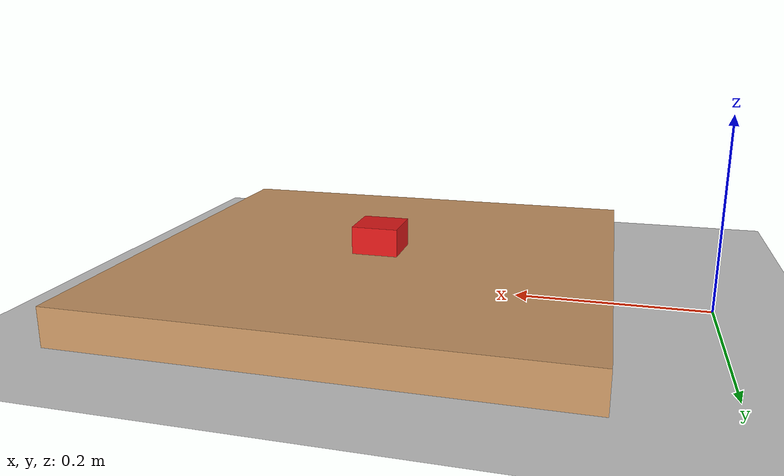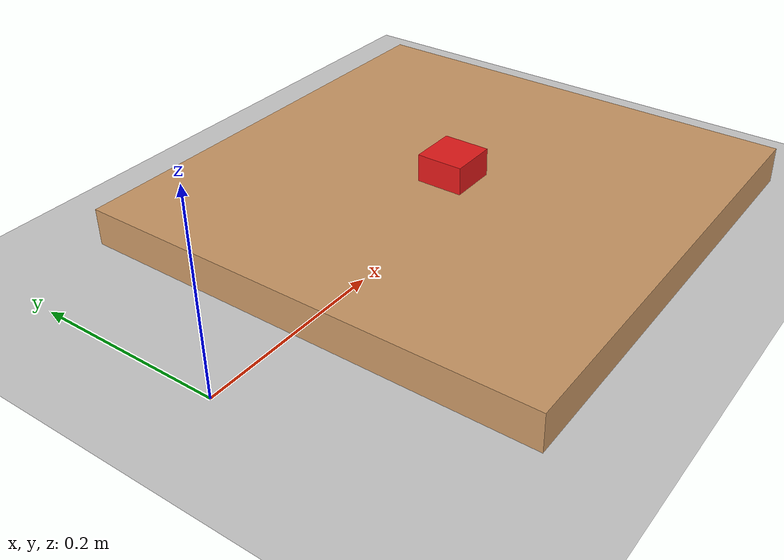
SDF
<?xml version="1.0" ?>
<sdf version="1.7">
  <world name="default">

    <gui fullscreen="0">
      <!-- Camera framed on this scene's workspace -->
      <plugin filename="MinimalScene" name="3D View">
        <gz-gui>
          <title>3D View</title>
          <property type="bool" key="showTitleBar">false</property>
          <property type="string" key="state">docked</property>
        </gz-gui>
        <engine>ogre2</engine>
        <scene>scene</scene>
        <ambient_light>0.4 0.4 0.4</ambient_light>
        <background_color>0.8 0.8 0.8</background_color>
        <camera_pose>-0.9 -0.9 0.9 0 0.49 0.67</camera_pose>
      </plugin>
      <plugin filename="EntityContextMenuPlugin" name="Entity context menu">
        <gz-gui>
          <property key="state" type="string">floating</property>
          <property key="width" type="double">5</property>
          <property key="height" type="double">5</property>
          <property key="showTitleBar" type="bool">false</property>
        </gz-gui>
      </plugin>
      <plugin filename="GzSceneManager" name="Scene Manager">
        <gz-gui>
          <property key="resizable" type="bool">false</property>
          <property key="width" type="double">5</property>
          <property key="height" type="double">5</property>
          <property key="state" type="string">floating</property>
          <property key="showTitleBar" type="bool">false</property>
        </gz-gui>
      </plugin>
      <plugin filename="InteractiveViewControl" name="Interactive view control">
        <gz-gui>
          <property key="resizable" type="bool">false</property>
          <property key="width" type="double">5</property>
          <property key="height" type="double">5</property>
          <property key="state" type="string">floating</property>
          <property key="showTitleBar" type="bool">false</property>
        </gz-gui>
      </plugin>
      <plugin filename="CameraTracking" name="Camera Tracking">
        <gz-gui>
          <property key="resizable" type="bool">false</property>
          <property key="width" type="double">5</property>
          <property key="height" type="double">5</property>
          <property key="state" type="string">floating</property>
          <property key="showTitleBar" type="bool">false</property>
        </gz-gui>
      </plugin>
      <plugin filename="MarkerManager" name="Marker manager">
        <gz-gui>
          <property key="resizable" type="bool">false</property>
          <property key="width" type="double">5</property>
          <property key="height" type="double">5</property>
          <property key="state" type="string">floating</property>
          <property key="showTitleBar" type="bool">false</property>
        </gz-gui>
      </plugin>
      <plugin filename="SelectEntities" name="Select Entities">
        <gz-gui>
          <property key="resizable" type="bool">false</property>
          <property key="width" type="double">5</property>
          <property key="height" type="double">5</property>
          <property key="state" type="string">floating</property>
          <property key="showTitleBar" type="bool">false</property>
        </gz-gui>
      </plugin>
      <plugin filename="Spawn" name="Spawn Entities">
        <gz-gui>
          <property key="resizable" type="bool">false</property>
          <property key="width" type="double">5</property>
          <property key="height" type="double">5</property>
          <property key="state" type="string">floating</property>
          <property key="showTitleBar" type="bool">false</property>
        </gz-gui>
      </plugin>
      <plugin filename="VisualizationCapabilities" name="Visualization Capabilities">
        <gz-gui>
          <property key="resizable" type="bool">false</property>
          <property key="width" type="double">5</property>
          <property key="height" type="double">5</property>
          <property key="state" type="string">floating</property>
          <property key="showTitleBar" type="bool">false</property>
        </gz-gui>
      </plugin>
      <plugin filename="WorldControl" name="World control">
        <gz-gui>
          <title>World control</title>
          <property type="bool" key="showTitleBar">false</property>
          <property type="bool" key="resizable">false</property>
          <property type="double" key="height">72</property>
          <property type="double" key="z">1</property>
          <property type="string" key="state">floating</property>
          <anchors target="3D View">
            <line own="left" target="left"/>
            <line own="bottom" target="bottom"/>
          </anchors>
        </gz-gui>
        <play_pause>true</play_pause>
        <step>true</step>
        <start_paused>true</start_paused>
        <use_event>true</use_event>
      </plugin>
      <plugin filename="WorldStats" name="World stats">
        <gz-gui>
          <title>World stats</title>
          <property type="bool" key="showTitleBar">false</property>
          <property type="bool" key="resizable">false</property>
          <property type="double" key="height">110</property>
          <property type="double" key="width">290</property>
          <property type="double" key="z">1</property>
          <property type="string" key="state">floating</property>
          <anchors target="3D View">
            <line own="right" target="right"/>
            <line own="bottom" target="bottom"/>
          </anchors>
        </gz-gui>
        <sim_time>true</sim_time>
        <real_time>true</real_time>
        <real_time_factor>true</real_time_factor>
        <iterations>true</iterations>
      </plugin>
      <plugin filename="EntityTree" name="Entity tree">
        <gz-gui>
          <property type="bool" key="showTitleBar">false</property>
          <property type="string" key="state">docked</property>
        </gz-gui>
      </plugin>
    </gui>

    <physics name="dart_physics" type="dart">
      <max_step_size>0.001</max_step_size>
      <real_time_factor>1</real_time_factor>
      <gravity>0.0 0.0 -9.8</gravity>
    </physics>

    <plugin filename="gz-sim-physics-system" name="gz::sim::systems::Physics"/>
    <plugin filename="gz-sim-user-commands-system" name="gz::sim::systems::UserCommands"/>
    <plugin filename="gz-sim-scene-broadcaster-system" name="gz::sim::systems::SceneBroadcaster"/>
    <plugin filename="gz-sim-sensors-system" name="gz::sim::systems::Sensors">
      <render_engine>ogre2</render_engine>
    </plugin>

    <light name="sun" type="directional">
      <cast_shadows>false</cast_shadows>
      <pose>0 0 10 0 0 0</pose>
      <diffuse>0.8 0.8 0.8 1</diffuse>
      <specular>0.2 0.2 0.2 1</specular>
      <attenuation>
        <range>1000</range>
        <constant>0.9</constant>
        <linear>0.01</linear>
        <quadratic>0.001</quadratic>
      </attenuation>
      <direction>-0.5 0.1 -0.9</direction>
    </light>

    <model name="ground_plane">
      <static>true</static>
      <link name="link">
        <collision name="collision">
          <geometry>
            <plane>
              <normal>0 0 1</normal>
            </plane>
          </geometry>
        </collision>
        <visual name="visual">
          <geometry>
            <plane>
              <normal>0 0 1</normal>
              <size>100 100</size>
            </plane>
          </geometry>
          <material>
            <ambient>0.8 0.8 0.8 1</ambient>
            <diffuse>0.8 0.8 0.8 1</diffuse>
            <specular>0.2 0.2 0.2 1</specular>
          </material>
        </visual>
      </link>
    </model>

    <model name="table">
      <static>true</static>
      <pose>0.35 0.0 0.02 0 0 0</pose>
      <link name="link">
        <collision name="collision">
          <geometry>
            <box><size>0.50 0.50 0.04</size></box>
          </geometry>
        </collision>
        <visual name="visual">
          <geometry>
            <box><size>0.50 0.50 0.04</size></box>
          </geometry>
          <material>
            <ambient>0.8 0.6 0.4 1</ambient>
            <diffuse>0.8 0.6 0.4 1</diffuse>
            <specular>0.2 0.2 0.2 1</specular>
          </material>
        </visual>
      </link>
    </model>

    <model name="red_box">
      <static>false</static>
      <pose>0.35 0.0 0.045 0 0 0</pose>
      <link name="link">
        <collision name="collision">
          <geometry>
            <box><size>0.05 0.05 0.05</size></box>
          </geometry>
          <surface>
            <friction>
              <ode><mu>1.5</mu><mu2>1.5</mu2></ode>
            </friction>
          </surface>
        </collision>
        <visual name="visual">
          <geometry>
            <box><size>0.05 0.05 0.05</size></box>
          </geometry>
          <material>
            <ambient>0.9 0.1 0.1 1</ambient>
            <diffuse>0.9 0.1 0.1 1</diffuse>
            <specular>0.2 0.2 0.2 1</specular>
          </material>
        </visual>
        <inertial>
          <mass>0.1</mass>
          <inertia>
            <ixx>0.0002</ixx><ixy>0</ixy><ixz>0</ixz>
            <iyy>0.0002</iyy><iyz>0</iyz>
            <izz>0.0002</izz>
          </inertia>
        </inertial>
      </link>
    </model>

    <model name="drop_zone">
      <static>true</static>
      <pose>0.35 0.20 0.025 0 0 0</pose>
      <link name="link">
        <collision name="collision">
          <geometry>
            <cylinder><radius>0.05</radius><length>0.005</length></cylinder>
          </geometry>
        </collision>
        <visual name="visual">
          <geometry>
            <cylinder><radius>0.05</radius><length>0.005</length></cylinder>
          </geometry>
          <material>
            <ambient>0.1 0.9 0.1 0.4</ambient>
            <diffuse>0.1 0.9 0.1 0.4</diffuse>
            <specular>0.2 0.2 0.2 0.4</specular>
          </material>
          <transparency>0.6</transparency>
        </visual>
      </link>
    </model>

    <!-- Matches the GUI's MinimalScene ambient_light/background_color above -->
    <scene>
      <ambient>0.4 0.4 0.4 1</ambient>
      <background>0.8 0.8 0.8 1</background>
      <shadows>true</shadows>
      <grid>false</grid>
    </scene>

  </world>
</sdf>
